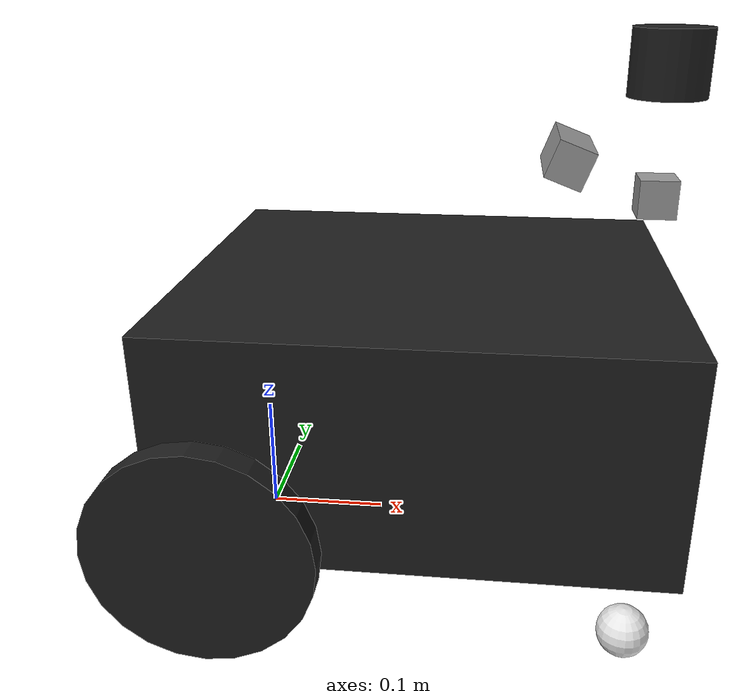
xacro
<?xml version="1.0"?>
<robot xmlns:xacro="http://www.ros.org/wiki/xacro" name="diffdrive_robot">

  <xacro:arg name="prefix" default="" />
<!-- 수정후-->

  <xacro:include filename="$(find my_bot_description)/urdf/diffbot_description.urdf.xacro" />

  <xacro:include filename="$(find my_bot_description)/urdf/diffbot.materials.xacro" />
  <xacro:include filename="$(find odrive_demo_description)/urdf/odrive.ros2_control.xacro" />

  <xacro:diffbot prefix="$(arg prefix)" />

  <xacro:odrive_ros2_control
    name="ODriveDiffBot"
    joint0_name="$(arg prefix)left_wheel_joint"
    joint1_name="$(arg prefix)right_wheel_joint" />

</robot>

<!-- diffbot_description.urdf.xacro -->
<robot xmlns:xacro="http://www.ros.org/wiki/xacro" name="mybot">

  <xacro:macro name="diffbot" params="prefix">

  <!-- Constants for robot dimensions -->
  <xacro:property name="PI" value="3.1415926535897931"/>
  <xacro:property name="base_mass" value="0.3" /> <!-- arbitrary value for base mass -->
  <xacro:property name="base_width" value="0.402" /><!-- 수정됨 -->
  <xacro:property name="body_width" value="0.34" />
  <xacro:property name="body_length" value="0.39" />
  <xacro:property name="body_height" value="0.18" />
  <xacro:property name="wheel_mass" value="0.3" /> <!-- arbitrary value for wheel mass -->
  <xacro:property name="wheel_len" value="0.020" />
  <xacro:property name="wheel_radius" value="0.085" /> <!-- 수정됨 -->
  <xacro:property name="caster_wheel_mass" value="0.1" /> <!-- arbitrary value for caster wheel mass -->
  <xacro:property name="caster_wheel_radius" value="0.019" /> <!-- 수정됨 -->
  <xacro:property name="camera_width" value="0.08" /><!-- 수정됨 -->
  <xacro:property name="camera_length" value="0.03" />
  <xacro:property name="camera_height" value="0.03" />
  <!-- Base Link -->
    <link name="${prefix}base_link">
      <collision>
        <origin xyz="0 0 0" rpy="0 0 0"/>
        <geometry>
          <box size="${body_length} ${body_width} ${body_height}"/>
        </geometry>
      </collision>

      <visual>
        <origin xyz="${body_length/2 - 0.05} 0 ${body_height/2+0.055}" rpy="0 0 0"/>
        <geometry>
          <box size="${body_length} ${body_width} ${body_height}"/>
        </geometry>
        <material name="black"/>
      </visual>

      <inertial>
        <origin xyz="0 0 0" rpy="0 0 0"/>
        <mass value="${base_mass}"/>
        <inertia
          ixx="${base_mass / 12.0 * (body_length*body_length + body_height*body_height)}" ixy="0.0" ixz="0.0"
          iyy="${base_mass / 12.0 * (body_height*body_height + body_width*body_width)}" iyz="0.0"
          izz="${base_mass / 12.0 * (body_width*body_width + body_length*body_length)}"/>
      </inertial>
    </link>
  <!-- left wheel joint & link -->
    <joint name="${prefix}left_wheel_joint" type="continuous"> <!-- continuous ->  fixed -->
      <parent link="${prefix}base_link"/>
      <child link="${prefix}left_wheel"/>
      <origin xyz="0 -${base_width/2} ${wheel_radius}" rpy="0 0 0"/>
      <axis xyz="0 1 0"/>
      <dynamics damping="0.2"/>
      <limit effort="100" velocity="1.0"/>
    </joint>
    <link name="${prefix}left_wheel">
      <collision>
        <origin xyz="0 0 0" rpy="${PI/2} 0 0"/>
        <geometry>
          <cylinder length="${wheel_len}" radius="${wheel_radius}"/>
        </geometry>
      </collision>

      <visual>
        <origin xyz="0 0 0" rpy="${PI/2} 0 0"/>
        <geometry>
          <cylinder length="${wheel_len}" radius="${wheel_radius}"/>
        </geometry>
        <material name="black"/>
      </visual>

      <inertial>
        <origin xyz="0 0 0" rpy="${PI/2} 0 0"/>
        <mass value="${wheel_mass}"/>
        <inertia
          ixx="${wheel_mass / 12.0 * (3*wheel_radius*wheel_radius + wheel_len*wheel_len)}" ixy="0.0" ixz="0.0"
          iyy="${wheel_mass / 12.0 * (3*wheel_radius*wheel_radius + wheel_len*wheel_len)}" iyz="0.0"
          izz="${wheel_mass / 2.0 * wheel_radius*wheel_radius}"/>
        </inertial>
      </link>

  <!-- right wheel joint & link -->
    <joint name="${prefix}right_wheel_joint" type="continuous"> <!-- continuous ->  fixed -->
      <parent link="${prefix}base_link"/>
      <child link="${prefix}right_wheel"/>
      <origin xyz="0 ${base_width/2} ${wheel_radius}" rpy="0 0 0"/>
      <axis xyz="0 1 0"/>
      <dynamics damping="0.2"/>
      <limit effort="100" velocity="1.0"/>
    </joint>
    <link name="${prefix}right_wheel">
      <collision>
        <origin xyz="0 0 0" rpy="${PI/2} 0 0"/>
        <geometry>
          <cylinder length="${wheel_len}" radius="${wheel_radius}"/>
        </geometry>
      </collision>

      <visual>
        <origin xyz="0 0 0" rpy="${PI/2} 0 0"/>
        <geometry>
          <cylinder length="${wheel_len}" radius="${wheel_radius}"/>
        </geometry>
        <material name="black"/>
      </visual>

      <inertial>
        <origin xyz="0 0 0" rpy="${PI/2} 0 0"/>
        <mass value="${wheel_mass}"/>
        <inertia
          ixx="${wheel_mass / 12.0 * (3*wheel_radius*wheel_radius + wheel_len*wheel_len)}" ixy="0.0" ixz="0.0"
          iyy="${wheel_mass / 12.0 * (3*wheel_radius*wheel_radius + wheel_len*wheel_len)}" iyz="0.0"
          izz="${wheel_mass / 2.0 * wheel_radius*wheel_radius}"/>
        </inertial>
      </link>

  <!-- caster frontal right wheel joint & link -->
    <joint name="${prefix}caster_right_wheel_joint" type="fixed">
      <parent link="${prefix}base_link"/>
      <child link="${prefix}caster_right_wheel"/>
      <origin xyz="${0.32 - caster_wheel_radius} ${-body_width/2} ${caster_wheel_radius}" rpy="0 0 0"/>
    </joint>
    <link name="${prefix}caster_right_wheel">
      <collision>
        <origin xyz="0 0 0" rpy="0 0 0"/>
        <geometry>
          <sphere radius="${caster_wheel_radius}"/>
        </geometry>
      </collision>

      <visual>
        <origin xyz="0 0 0" rpy="0 0 0"/>
        <geometry>
          <sphere radius="${caster_wheel_radius}"/>
        </geometry>
        <material name="white"/>
      </visual>

      <inertial>
        <origin xyz="0 0 0" rpy="0 0 0"/>
        <mass value="${caster_wheel_mass}"/>
        <inertia
          ixx="${caster_wheel_mass * 0.4 * (caster_wheel_radius * caster_wheel_radius)}" ixy="0.0" ixz="0.0"
          iyy="${caster_wheel_mass * 0.4 * (caster_wheel_radius * caster_wheel_radius)}" iyz="0.0"
          izz="${caster_wheel_mass * 0.4 * (caster_wheel_radius * caster_wheel_radius)}"/>
        </inertial>
      </link>

  <!-- caster frontal left wheel joint & link -->
    <joint name="${prefix}caster_left_wheel_joint" type="fixed">
      <parent link="${prefix}base_link"/>
      <child link="${prefix}caster_left_wheel"/>
      <origin xyz="${0.32 - caster_wheel_radius} ${body_width/2} ${caster_wheel_radius}" rpy="0 0 0"/>
    </joint>
    <link name="${prefix}caster_left_wheel">
      <collision>
        <origin xyz="0 0 0" rpy="0 0 0"/>
        <geometry>
          <sphere radius="${caster_wheel_radius}"/>
        </geometry>
      </collision>

      <visual>
        <origin xyz="0 0 0" rpy="0 0 0"/>
        <geometry>
          <sphere radius="${caster_wheel_radius}"/>
        </geometry>
        <material name="white"/>
      </visual>

      <inertial>
        <origin xyz="0 0 0" rpy="0 0 0"/>
        <mass value="${caster_wheel_mass}"/>
        <inertia
          ixx="${caster_wheel_mass * 0.4 * (caster_wheel_radius * caster_wheel_radius)}" ixy="0.0" ixz="0.0"
          iyy="${caster_wheel_mass * 0.4 * (caster_wheel_radius * caster_wheel_radius)}" iyz="0.0"
          izz="${caster_wheel_mass * 0.4 * (caster_wheel_radius * caster_wheel_radius)}"/>
        </inertial>
      </link>
  <!-- horizontal_rader joint & link  추가됨-->
    <joint name="${prefix}horizontal_laser_joint" type="fixed">
      <parent link="${prefix}base_link" />
      <child link="${prefix}horizontal_laser_link" /> <!-- horizontal_laser_link  ==  tilting_frame-->
      <origin xyz="0.32 0 0.4" rpy="0 0 ${PI/2}"/>
    </joint>
    <link name="${prefix}horizontal_laser_link">
      <visual>
        <origin xyz="0 0 0" />
        <geometry>
          <cylinder length="0.05" radius="0.03" />
        </geometry>
        <material name="black" />
      </visual>
    </link>

    <!-- rear_camera joint & link  추가됨-->
    <joint name="${prefix}rear_camera_joint" type="fixed">
      <parent link="${prefix}base_link" />
      <child link="${prefix}rear_camera_color_optical_frame" />
      <origin xyz="0.25 0 0.33" rpy="${-PI/2+PI/2*(21/90)} 0 ${PI/2}"/>
    </joint>
    <link name="${prefix}rear_camera_color_optical_frame">
      <visual>
        <origin xyz="0 0 0"/>
        <geometry>
          <box size="${camera_width}  ${camera_height} ${camera_length}"/>
        </geometry>
        <material name="grey" />
      </visual>
    </link>

    <!-- front_camera joint & link  추가됨-->
    <joint name="${prefix}front_camera_link_joint" type="fixed">
      <parent link="${prefix}base_link" />
      <child link="${prefix}camera_link" />
      <origin xyz="0.32 0 0.3" rpy="0 0 0"/>
    </joint>
    <link name="${prefix}camera_link">
      <visual>
        <origin xyz="0 0 0"/>
        <geometry>
          <box size="0.03 0.03 0.03"/>
        </geometry>
        <material name="grey" />
      </visual>
    </link>

    <!-- front_camera joint & link  추가됨-->
    <joint name="${prefix}base_joint" type="fixed">
      <parent link="${prefix}base_link"/>
      <child link="${prefix}base_footprint"/>
      <origin xyz="0 0 0" rpy="0 0 0"/>
    </joint>
    <link name="${prefix}base_footprint">
      <visual>
        <origin xyz="0 0 0"/>
        <geometry>
          <box size="0 0 0"/>
        </geometry>
        <material name="grey" />
      </visual>
    </link>

  </xacro:macro>

</robot>
